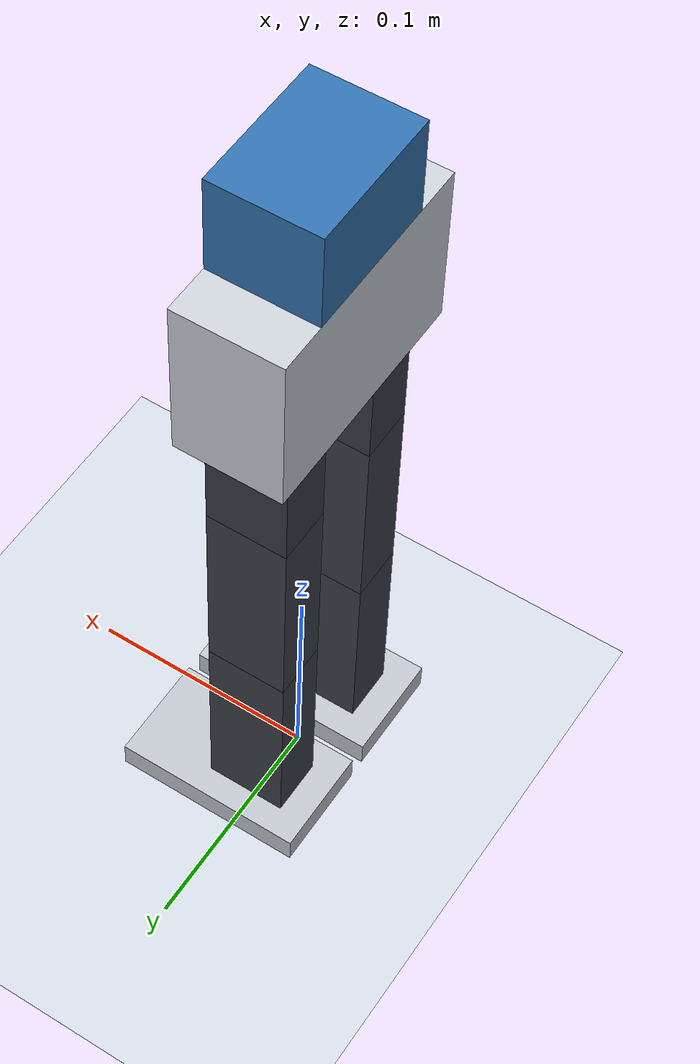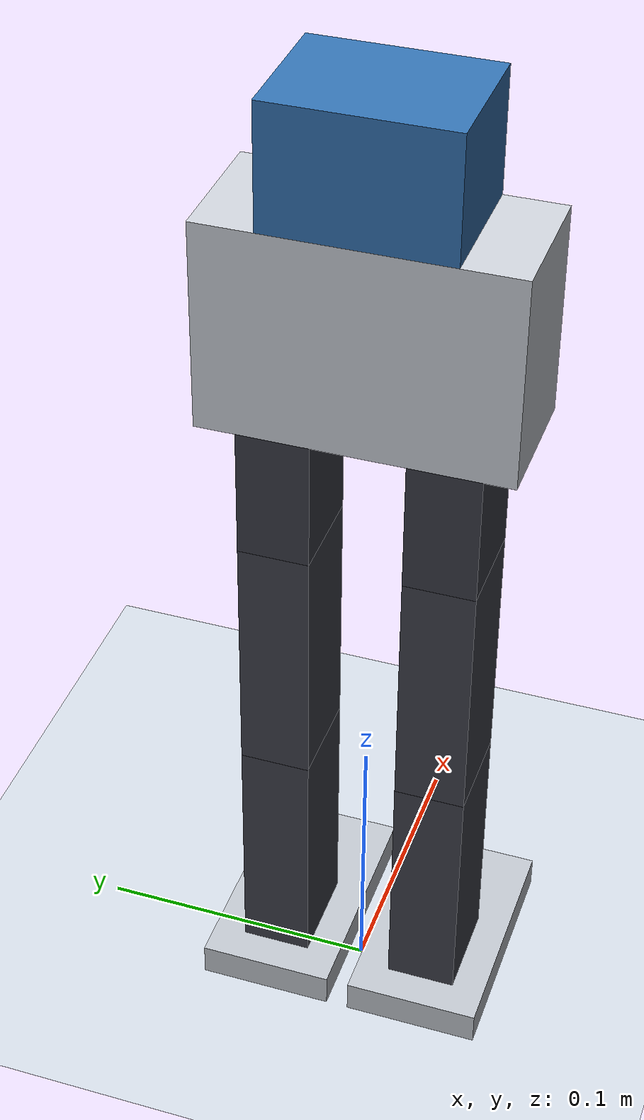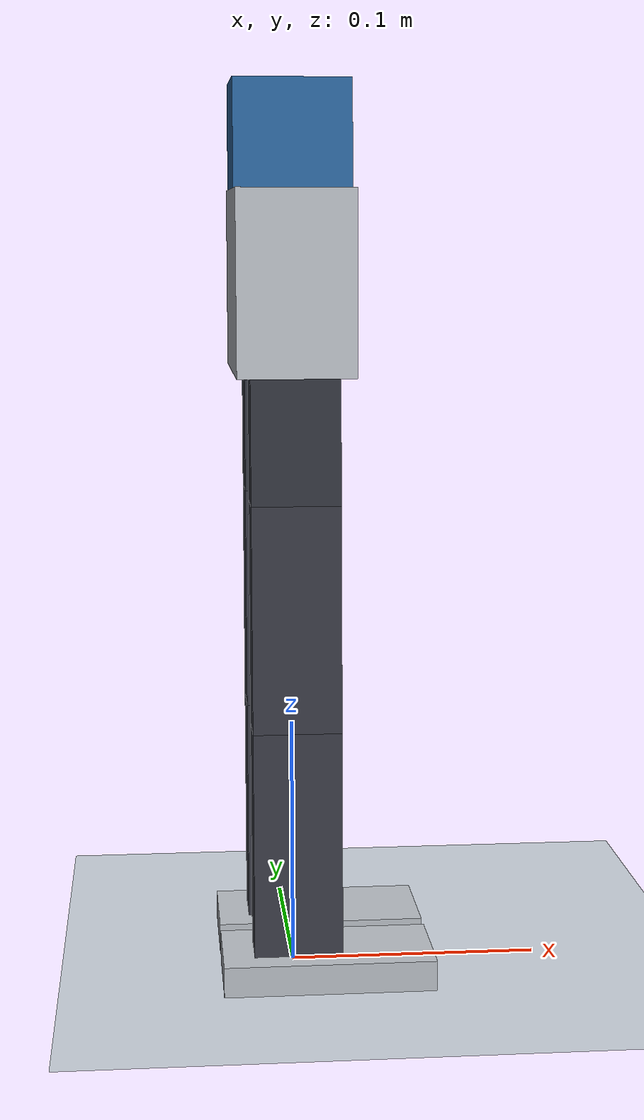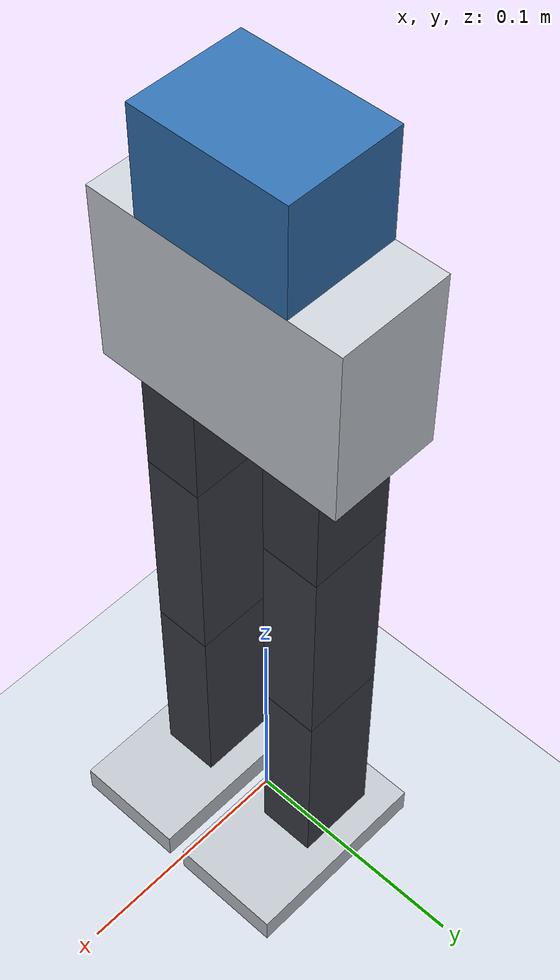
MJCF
<mujoco model="bimo_like_biped">
  <!-- Physics model matching the OpenSCAD massing: 8x STS3215, 4 DOF/leg. -->
  <!-- Why: validate the mechanism stands & moves within limits before printing. -->
  <compiler angle="degree" autolimits="true"/>
  <option timestep="0.002" gravity="0 0 -9.81" integrator="implicitfast"/>

  <visual>
    <global offwidth="900" offheight="1100"/>
    <headlight diffuse="0.7 0.7 0.7" ambient="0.35 0.35 0.35"/>
  </visual>

  <default>
    <joint type="hinge" damping="0.6" armature="0.008" frictionloss="0.02" limited="true"/>
    <position kp="40" forcerange="-3 3"/>          <!-- STS3215 ~2.9 N*m stall -->
    <geom contype="0" conaffinity="0"/>            <!-- internal parts don't self-collide -->
  </default>

  <worldbody>
    <light pos="0.6 0.4 1.5" dir="-0.4 -0.3 -1" directional="true"/>
    <geom name="floor" type="plane" size="3 3 0.1" contype="1" conaffinity="1"
          rgba="0.83 0.86 0.90 1" friction="1 0.02 0.001"/>

    <body name="torso" pos="0 0 0.28">
      <freejoint/>
      <geom name="torso" type="box" size="0.023 0.052 0.036" density="1200" rgba="0.80 0.82 0.85 1"/>
      <geom name="head"  type="box" pos="0 0 0.057" size="0.023 0.031 0.021" density="500" rgba="0.20 0.45 0.70 1"/>
      <site name="imu" pos="0 0 0"/>

      <!-- ================= LEFT LEG ================= -->
      <body name="L_hip" pos="0 0.028 -0.036">
        <joint name="L_hip_roll" axis="1 0 0" range="-25 25"/>
        <geom type="box" pos="0 0 -0.025" size="0.0175 0.0123 0.025" density="1410" rgba="0.22 0.23 0.27 1"/>
        <body name="L_thigh" pos="0 0 -0.05">
          <joint name="L_hip_pitch" axis="0 1 0" range="-60 60"/>
          <geom type="box" pos="0 0 -0.045" size="0.0175 0.0123 0.045" density="850" rgba="0.24 0.25 0.29 1"/>
          <body name="L_shin" pos="0 0 -0.09">
            <joint name="L_knee" axis="0 1 0" range="-95 5"/>
            <geom type="box" pos="0 0 -0.045" size="0.0175 0.0123 0.045" density="850" rgba="0.24 0.25 0.29 1"/>
            <body name="L_foot" pos="0 0 -0.09">
              <joint name="L_ankle" axis="0 1 0" range="-40 40"/>
              <geom name="L_sole" type="box" pos="0.012 0 -0.006" size="0.042 0.024 0.006"
                    contype="1" conaffinity="1" density="700" rgba="0.75 0.77 0.80 1" friction="1 0.02 0.001"/>
            </body>
          </body>
        </body>
      </body>

      <!-- ================= RIGHT LEG ================= -->
      <body name="R_hip" pos="0 -0.028 -0.036">
        <joint name="R_hip_roll" axis="1 0 0" range="-25 25"/>
        <geom type="box" pos="0 0 -0.025" size="0.0175 0.0123 0.025" density="1410" rgba="0.22 0.23 0.27 1"/>
        <body name="R_thigh" pos="0 0 -0.05">
          <joint name="R_hip_pitch" axis="0 1 0" range="-60 60"/>
          <geom type="box" pos="0 0 -0.045" size="0.0175 0.0123 0.045" density="850" rgba="0.24 0.25 0.29 1"/>
          <body name="R_shin" pos="0 0 -0.09">
            <joint name="R_knee" axis="0 1 0" range="-95 5"/>
            <geom type="box" pos="0 0 -0.045" size="0.0175 0.0123 0.045" density="850" rgba="0.24 0.25 0.29 1"/>
            <body name="R_foot" pos="0 0 -0.09">
              <joint name="R_ankle" axis="0 1 0" range="-40 40"/>
              <geom name="R_sole" type="box" pos="0.012 0 -0.006" size="0.042 0.024 0.006"
                    contype="1" conaffinity="1" density="700" rgba="0.75 0.77 0.80 1" friction="1 0.02 0.001"/>
            </body>
          </body>
        </body>
      </body>
    </body>
  </worldbody>

  <actuator>
    <position name="L_hip_roll"  joint="L_hip_roll"/>
    <position name="L_hip_pitch" joint="L_hip_pitch"/>
    <position name="L_knee"      joint="L_knee"/>
    <position name="L_ankle"     joint="L_ankle"/>
    <position name="R_hip_roll"  joint="R_hip_roll"/>
    <position name="R_hip_pitch" joint="R_hip_pitch"/>
    <position name="R_knee"      joint="R_knee"/>
    <position name="R_ankle"     joint="R_ankle"/>
  </actuator>

  <sensor>
    <framezaxis objtype="site" objname="imu" name="torso_up"/>
    <framepos   objtype="site" objname="imu" name="torso_pos"/>
  </sensor>
</mujoco>
